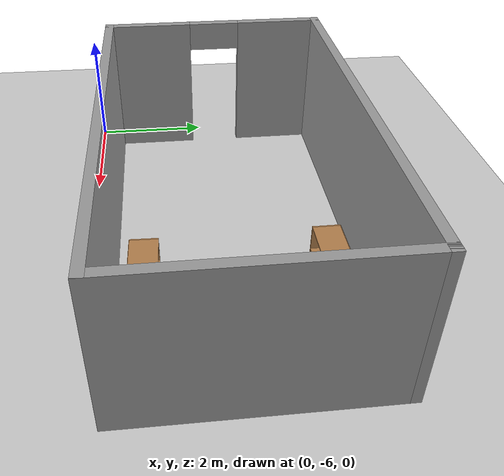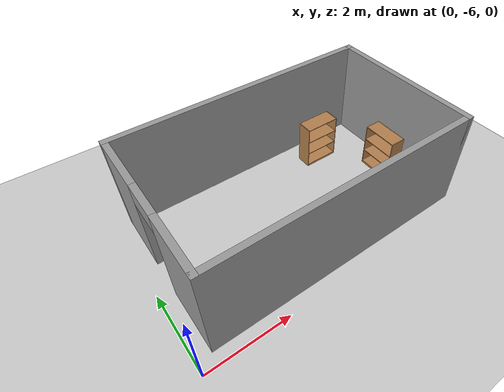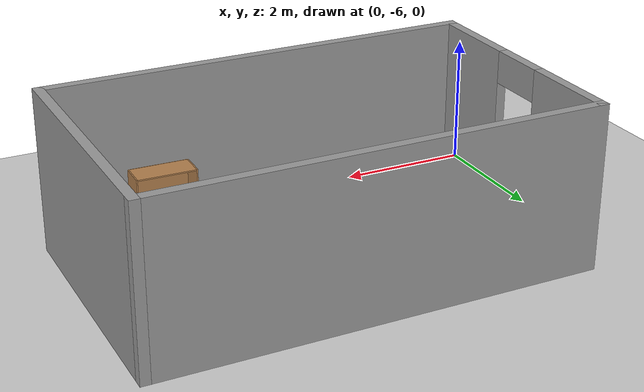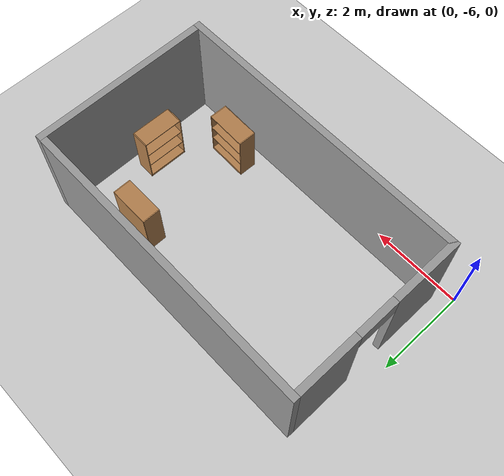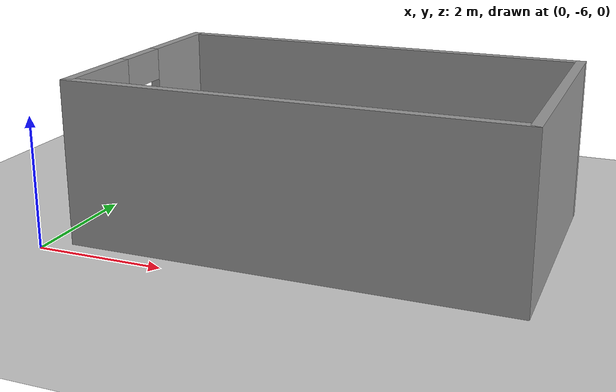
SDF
<sdf version="1.6">
 <world name="default">
  <light name="sun" type="directional">
   <pose>0 0 10 0 -0 0</pose>
   <diffuse>0.8 0.8 0.8 1</diffuse>
   <specular>0.1 0.1 0.1 1</specular>
   <attenuation>
    <range>1000</range>
    <constant>0.9</constant>
    <linear>0.01</linear>
    <quadratic>0.001</quadratic>
   </attenuation>
   <direction>-0.5 0.5 -1</direction>
  </light>
  <model name="ground_plane">
   <static>1</static>
   <link name="link">
    <collision name="collision">
     <geometry><plane><normal>0 0 1</normal><size>100 100</size></plane></geometry>
     <surface><friction><ode><mu>100</mu><mu2>50</mu2></ode></friction></surface>
    </collision>
    <visual name="visual">
     <cast_shadows>0</cast_shadows>
     <geometry><plane><normal>0 0 1</normal><size>100 100</size></plane></geometry>
     <material>
      <script><uri>file://media/materials/scripts/gazebo.material</uri><name>Gazebo/Grey</name></script>
     </material>
    </visual>
   </link>
  </model>
  <gravity>0 0 -9.8</gravity>
  <magnetic_field>6e-06 2.3e-05 -4.2e-05</magnetic_field>
  <atmosphere type="adiabatic"/>
  <physics name="default_physics" default="0" type="ode">
   <max_step_size>0.001</max_step_size>
   <real_time_factor>1</real_time_factor>
   <real_time_update_rate>1000</real_time_update_rate>
  </physics>
  <scene><ambient>0.4 0.4 0.4 1</ambient><background>0.7 0.7 0.7 1</background><shadows>1</shadows></scene>
  <spherical_coordinates>
   <surface_model>EARTH_WGS84</surface_model>
   <latitude_deg>0</latitude_deg>
   <longitude_deg>0</longitude_deg>
   <elevation>0</elevation>
   <heading_deg>0</heading_deg>
  </spherical_coordinates>
  <model name="work_space">
   <pose>3.72375 -3.71214 0 0 -0 0</pose>
   <link name="Wall_10">
    <collision name="Wall_10_Collision">
     <geometry><box><size>4 0.15 2.5</size></box></geometry>
     <pose>0 0 1.25 0 -0 0</pose>
    </collision>
    <visual name="Wall_10_Visual">
     <pose>0 0 1.25 0 -0 0</pose>
     <geometry><box><size>4 0.15 2.5</size></box></geometry>
     <material>
      <script><uri>file://media/materials/scripts/gazebo.material</uri><name>Gazebo/Grey</name></script>
      <ambient>1 1 1 1</ambient>
     </material>
    </visual>
    <pose>3.3 0 0 0 -0 1.5708</pose>
   </link>
   <link name="Wall_11">
    <collision name="Wall_11_Collision">
     <geometry><box><size>6.75 0.15 2.5</size></box></geometry>
     <pose>0 0 1.25 0 -0 0</pose>
    </collision>
    <visual name="Wall_11_Visual">
     <pose>0 0 1.25 0 -0 0</pose>
     <geometry><box><size>6.75 0.15 2.5</size></box></geometry>
     <material>
      <script><uri>file://media/materials/scripts/gazebo.material</uri><name>Gazebo/Grey</name></script>
      <ambient>1 1 1 1</ambient>
     </material>
    </visual>
    <pose>0 1.925 0 0 -0 3.14159</pose>
   </link>
   <link name="Wall_12">
    <pose>-3.3 0 0 0 0 -1.5708</pose>
    <visual name="Wall_12_Visual_0">
     <pose>-1.22826 0 1.25 0 -0 0</pose>
     <geometry><box><size>1.54349 0.15 2.5</size></box></geometry>
     <material>
      <script><uri>file://media/materials/scripts/gazebo.material</uri><name>Gazebo/Grey</name></script>
      <ambient>1 1 1 1</ambient>
     </material>
    </visual>
    <collision name="Wall_12_Collision_0">
     <geometry><box><size>1.54349 0.15 2.5</size></box></geometry>
     <pose>-1.22826 0 1.25 0 -0 0</pose>
    </collision>
    <visual name="Wall_12_Visual_1">
     <pose>1.22174 0 1.25 0 -0 0</pose>
     <geometry><box><size>1.55651 0.15 2.5</size></box></geometry>
     <material>
      <script><uri>file://media/materials/scripts/gazebo.material</uri><name>Gazebo/Grey</name></script>
      <ambient>1 1 1 1</ambient>
     </material>
    </visual>
    <collision name="Wall_12_Collision_1">
     <geometry><box><size>1.55651 0.15 2.5</size></box></geometry>
     <pose>1.22174 0 1.25 0 -0 0</pose>
    </collision>
    <visual name="Wall_12_Visual_2">
     <pose>-0.006511 0 2.25 0 -0 0</pose>
     <geometry><box><size>0.9 0.15 0.5</size></box></geometry>
     <material>
      <script><uri>file://media/materials/scripts/gazebo.material</uri><name>Gazebo/Grey</name></script>
      <ambient>1 1 1 1</ambient>
     </material>
    </visual>
    <collision name="Wall_12_Collision_2">
     <geometry><box><size>0.9 0.15 0.5</size></box></geometry>
     <pose>-0.006511 0 2.25 0 -0 0</pose>
    </collision>
   </link>
   <link name="Wall_9">
    <collision name="Wall_9_Collision">
     <geometry><box><size>6.75 0.15 2.5</size></box></geometry>
     <pose>0 0 1.25 0 -0 0</pose>
    </collision>
    <visual name="Wall_9_Visual">
     <pose>0 0 1.25 0 -0 0</pose>
     <geometry><box><size>6.75 0.15 2.5</size></box></geometry>
     <material>
      <script><uri>file://media/materials/scripts/gazebo.material</uri><name>Gazebo/Grey</name></script>
      <ambient>1 1 1 1</ambient>
     </material>
    </visual>
    <pose>0 -1.925 0 0 -0 0</pose>
   </link>
   <static>1</static>
  </model>
  <model name="bookshelf">
   <static>1</static>
   <link name="link">
    <inertial><mass>1</mass></inertial>
    <collision name="back">
     <pose>0 0.005 0.6 0 -0 0</pose>
     <geometry><box><size>0.9 0.01 1.2</size></box></geometry>
    </collision>
    <visual name="visual1">
     <pose>0 0.005 0.6 0 -0 0</pose>
     <geometry><box><size>0.9 0.01 1.2</size></box></geometry>
     <material>
      <script><uri>file://media/materials/scripts/gazebo.material</uri><name>Gazebo/Wood</name></script>
     </material>
    </visual>
    <collision name="left_side">
     <pose>0.45 -0.195 0.6 0 -0 0</pose>
     <geometry><box><size>0.02 0.4 1.2</size></box></geometry>
    </collision>
    <visual name="visual2">
     <pose>0.45 -0.195 0.6 0 -0 0</pose>
     <geometry><box><size>0.02 0.4 1.2</size></box></geometry>
     <material>
      <script><uri>file://media/materials/scripts/gazebo.material</uri><name>Gazebo/Wood</name></script>
     </material>
    </visual>
    <collision name="right_side">
     <pose>-0.45 -0.195 0.6 0 -0 0</pose>
     <geometry><box><size>0.02 0.4 1.2</size></box></geometry>
    </collision>
    <visual name="visual3">
     <pose>-0.45 -0.195 0.6 0 -0 0</pose>
     <geometry><box><size>0.02 0.4 1.2</size></box></geometry>
     <material>
      <script><uri>file://media/materials/scripts/gazebo.material</uri><name>Gazebo/Wood</name></script>
     </material>
    </visual>
    <collision name="bottom">
     <pose>0 -0.195 0.03 0 -0 0</pose>
     <geometry><box><size>0.88 0.4 0.06</size></box></geometry>
    </collision>
    <visual name="visual4">
     <pose>0 -0.195 0.03 0 -0 0</pose>
     <geometry><box><size>0.88 0.4 0.06</size></box></geometry>
     <material>
      <script><uri>file://media/materials/scripts/gazebo.material</uri><name>Gazebo/Wood</name></script>
     </material>
    </visual>
    <collision name="top">
     <pose>0 -0.195 1.19 0 -0 0</pose>
     <geometry><box><size>0.88 0.4 0.02</size></box></geometry>
    </collision>
    <visual name="visual5">
     <pose>0 -0.195 1.19 0 -0 0</pose>
     <geometry><box><size>0.88 0.4 0.02</size></box></geometry>
     <material>
      <script><uri>file://media/materials/scripts/gazebo.material</uri><name>Gazebo/Wood</name></script>
     </material>
    </visual>
    <collision name="low_shelf">
     <pose>0 -0.195 0.43 0 -0 0</pose>
     <geometry><box><size>0.88 0.4 0.02</size></box></geometry>
    </collision>
    <visual name="visual6">
     <pose>0 -0.195 0.43 0 -0 0</pose>
     <geometry><box><size>0.88 0.4 0.02</size></box></geometry>
     <material>
      <script><uri>file://media/materials/scripts/gazebo.material</uri><name>Gazebo/Wood</name></script>
     </material>
    </visual>
    <collision name="high_shelf">
     <pose>0 -0.195 0.8 0 -0 0</pose>
     <geometry><box><size>0.88 0.4 0.02</size></box></geometry>
    </collision>
    <visual name="visual7">
     <pose>0 -0.195 0.8 0 -0 0</pose>
     <geometry><box><size>0.88 0.4 0.02</size></box></geometry>
     <material>
      <script><uri>file://media/materials/scripts/gazebo.material</uri><name>Gazebo/Wood</name></script>
     </material>
    </visual>
   </link>
   <pose>5.44904 -2.3362 0 0 -0 0</pose>
  </model>
  <model name="bookshelf_clone">
   <static>1</static>
   <link name="link">
    <inertial><mass>1</mass></inertial>
    <collision name="back">
     <pose>0 0.005 0.6 0 -0 0</pose>
     <geometry><box><size>0.9 0.01 1.2</size></box></geometry>
    </collision>
    <visual name="visual1">
     <pose>0 0.005 0.6 0 -0 0</pose>
     <geometry><box><size>0.9 0.01 1.2</size></box></geometry>
     <material>
      <script><uri>file://media/materials/scripts/gazebo.material</uri><name>Gazebo/Wood</name></script>
     </material>
    </visual>
    <collision name="left_side">
     <pose>0.45 -0.195 0.6 0 -0 0</pose>
     <geometry><box><size>0.02 0.4 1.2</size></box></geometry>
    </collision>
    <visual name="visual2">
     <pose>0.45 -0.195 0.6 0 -0 0</pose>
     <geometry><box><size>0.02 0.4 1.2</size></box></geometry>
     <material>
      <script><uri>file://media/materials/scripts/gazebo.material</uri><name>Gazebo/Wood</name></script>
     </material>
    </visual>
    <collision name="right_side">
     <pose>-0.45 -0.195 0.6 0 -0 0</pose>
     <geometry><box><size>0.02 0.4 1.2</size></box></geometry>
    </collision>
    <visual name="visual3">
     <pose>-0.45 -0.195 0.6 0 -0 0</pose>
     <geometry><box><size>0.02 0.4 1.2</size></box></geometry>
     <material>
      <script><uri>file://media/materials/scripts/gazebo.material</uri><name>Gazebo/Wood</name></script>
     </material>
    </visual>
    <collision name="bottom">
     <pose>0 -0.195 0.03 0 -0 0</pose>
     <geometry><box><size>0.88 0.4 0.06</size></box></geometry>
    </collision>
    <visual name="visual4">
     <pose>0 -0.195 0.03 0 -0 0</pose>
     <geometry><box><size>0.88 0.4 0.06</size></box></geometry>
     <material>
      <script><uri>file://media/materials/scripts/gazebo.material</uri><name>Gazebo/Wood</name></script>
     </material>
    </visual>
    <collision name="top">
     <pose>0 -0.195 1.19 0 -0 0</pose>
     <geometry><box><size>0.88 0.4 0.02</size></box></geometry>
    </collision>
    <visual name="visual5">
     <pose>0 -0.195 1.19 0 -0 0</pose>
     <geometry><box><size>0.88 0.4 0.02</size></box></geometry>
     <material>
      <script><uri>file://media/materials/scripts/gazebo.material</uri><name>Gazebo/Wood</name></script>
     </material>
    </visual>
    <collision name="low_shelf">
     <pose>0 -0.195 0.43 0 -0 0</pose>
     <geometry><box><size>0.88 0.4 0.02</size></box></geometry>
    </collision>
    <visual name="visual6">
     <pose>0 -0.195 0.43 0 -0 0</pose>
     <geometry><box><size>0.88 0.4 0.02</size></box></geometry>
     <material>
      <script><uri>file://media/materials/scripts/gazebo.material</uri><name>Gazebo/Wood</name></script>
     </material>
    </visual>
    <collision name="high_shelf">
     <pose>0 -0.195 0.8 0 -0 0</pose>
     <geometry><box><size>0.88 0.4 0.02</size></box></geometry>
    </collision>
    <visual name="visual7">
     <pose>0 -0.195 0.8 0 -0 0</pose>
     <geometry><box><size>0.88 0.4 0.02</size></box></geometry>
     <material>
      <script><uri>file://media/materials/scripts/gazebo.material</uri><name>Gazebo/Wood</name></script>
     </material>
    </visual>
   </link>
   <pose>6.69312 -3.93119 0 0 0 -1.58548</pose>
  </model>
  <model name="bookshelf_clone_0">
   <static>1</static>
   <link name="link">
    <inertial><mass>1</mass></inertial>
    <collision name="back">
     <pose>0 0.005 0.6 0 -0 0</pose>
     <geometry><box><size>0.9 0.01 1.2</size></box></geometry>
    </collision>
    <visual name="visual1">
     <pose>0 0.005 0.6 0 -0 0</pose>
     <geometry><box><size>0.9 0.01 1.2</size></box></geometry>
     <material>
      <script><uri>file://media/materials/scripts/gazebo.material</uri><name>Gazebo/Wood</name></script>
     </material>
    </visual>
    <collision name="left_side">
     <pose>0.45 -0.195 0.6 0 -0 0</pose>
     <geometry><box><size>0.02 0.4 1.2</size></box></geometry>
    </collision>
    <visual name="visual2">
     <pose>0.45 -0.195 0.6 0 -0 0</pose>
     <geometry><box><size>0.02 0.4 1.2</size></box></geometry>
     <material>
      <script><uri>file://media/materials/scripts/gazebo.material</uri><name>Gazebo/Wood</name></script>
     </material>
    </visual>
    <collision name="right_side">
     <pose>-0.45 -0.195 0.6 0 -0 0</pose>
     <geometry><box><size>0.02 0.4 1.2</size></box></geometry>
    </collision>
    <visual name="visual3">
     <pose>-0.45 -0.195 0.6 0 -0 0</pose>
     <geometry><box><size>0.02 0.4 1.2</size></box></geometry>
     <material>
      <script><uri>file://media/materials/scripts/gazebo.material</uri><name>Gazebo/Wood</name></script>
     </material>
    </visual>
    <collision name="bottom">
     <pose>0 -0.195 0.03 0 -0 0</pose>
     <geometry><box><size>0.88 0.4 0.06</size></box></geometry>
    </collision>
    <visual name="visual4">
     <pose>0 -0.195 0.03 0 -0 0</pose>
     <geometry><box><size>0.88 0.4 0.06</size></box></geometry>
     <material>
      <script><uri>file://media/materials/scripts/gazebo.material</uri><name>Gazebo/Wood</name></script>
     </material>
    </visual>
    <collision name="top">
     <pose>0 -0.195 1.19 0 -0 0</pose>
     <geometry><box><size>0.88 0.4 0.02</size></box></geometry>
    </collision>
    <visual name="visual5">
     <pose>0 -0.195 1.19 0 -0 0</pose>
     <geometry><box><size>0.88 0.4 0.02</size></box></geometry>
     <material>
      <script><uri>file://media/materials/scripts/gazebo.material</uri><name>Gazebo/Wood</name></script>
     </material>
    </visual>
    <collision name="low_shelf">
     <pose>0 -0.195 0.43 0 -0 0</pose>
     <geometry><box><size>0.88 0.4 0.02</size></box></geometry>
    </collision>
    <visual name="visual6">
     <pose>0 -0.195 0.43 0 -0 0</pose>
     <geometry><box><size>0.88 0.4 0.02</size></box></geometry>
     <material>
      <script><uri>file://media/materials/scripts/gazebo.material</uri><name>Gazebo/Wood</name></script>
     </material>
    </visual>
    <collision name="high_shelf">
     <pose>0 -0.195 0.8 0 -0 0</pose>
     <geometry><box><size>0.88 0.4 0.02</size></box></geometry>
    </collision>
    <visual name="visual7">
     <pose>0 -0.195 0.8 0 -0 0</pose>
     <geometry><box><size>0.88 0.4 0.02</size></box></geometry>
     <material>
      <script><uri>file://media/materials/scripts/gazebo.material</uri><name>Gazebo/Wood</name></script>
     </material>
    </visual>
   </link>
   <pose>5.47565 -5.28988 0 0 -0 3.11609</pose>
  </model>
  <plugin filename="libcollision_map_creator.so" name="collision_map_creator"/>
 </world>
</sdf>
